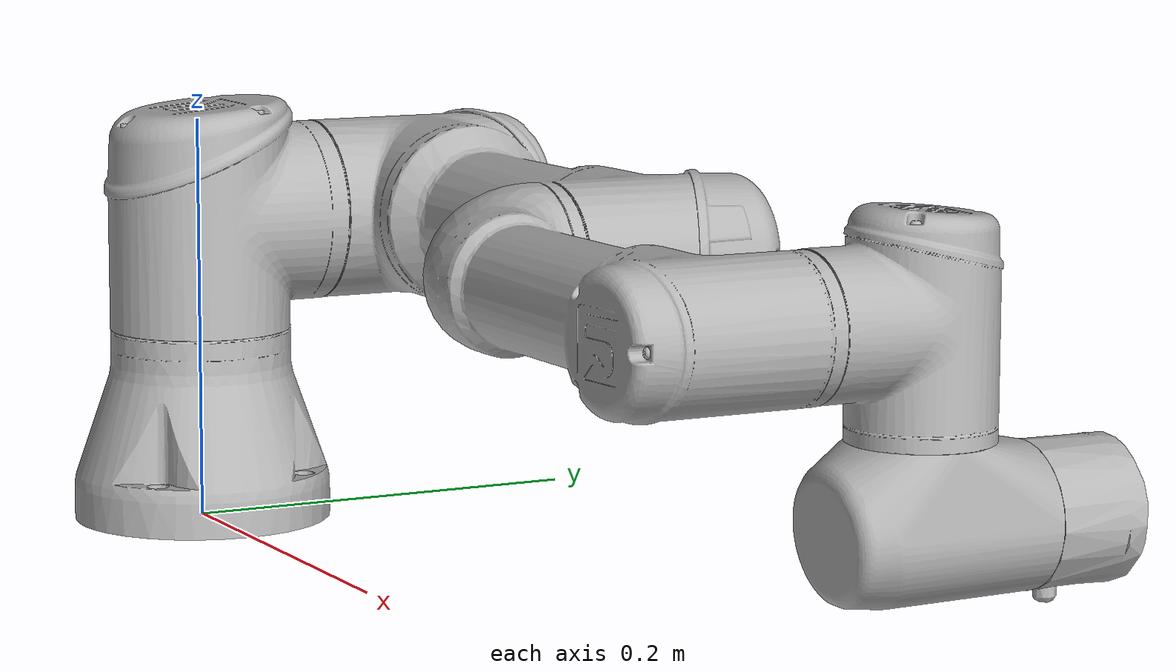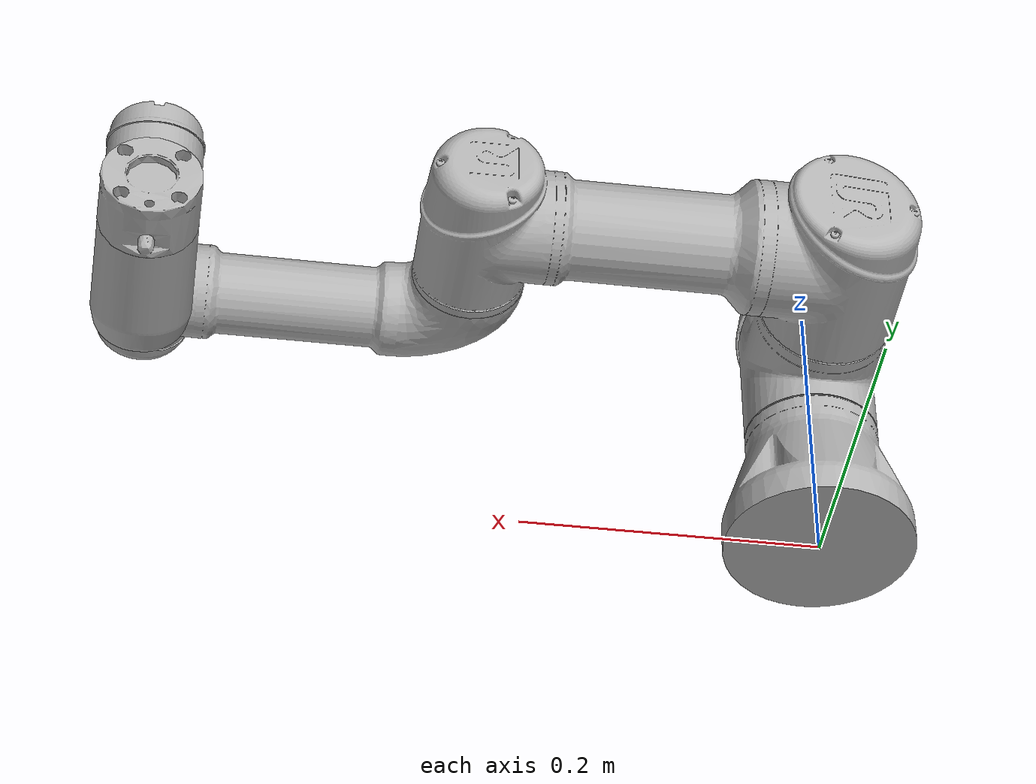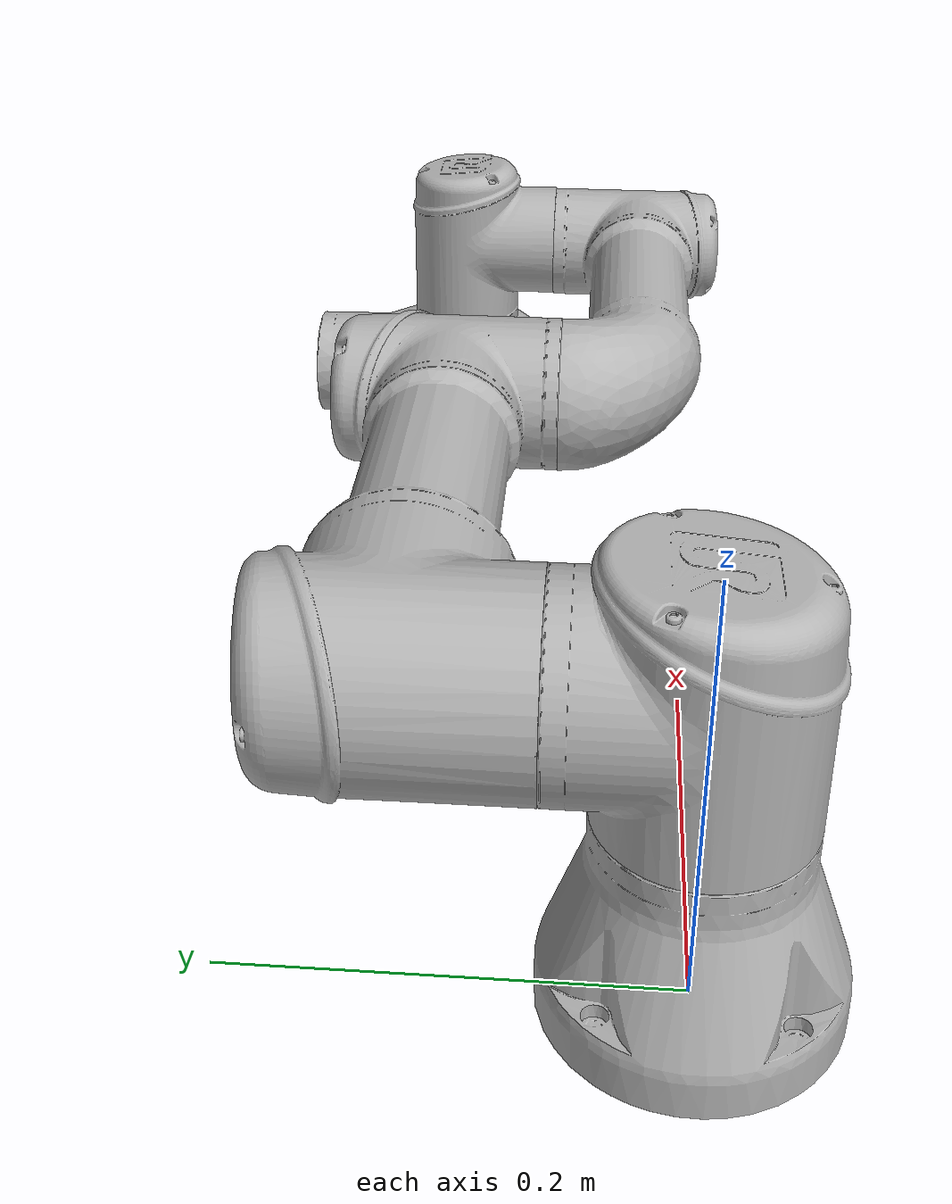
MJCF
<mujoco model="ur3e_robot">
  <compiler angle="radian" meshdir="../meshes/"/>
  <option gravity="0 0 -9.81" integrator="RK4" timestep="0.002"/>

  <asset>
    <mesh name="base" content_type="model/stl" file="ur3e/collision/base.stl"/>
    <mesh name="shoulder" content_type="model/stl" file="ur3e/collision/shoulder.stl"/>
    <mesh name="upperarm" content_type="model/stl" file="ur3e/collision/upperarm.stl"/>
    <mesh name="forearm" content_type="model/stl" file="ur3e/collision/forearm.stl"/>
    <mesh name="wrist1" content_type="model/stl" file="ur3e/collision/wrist1.stl"/>
    <mesh name="wrist2" content_type="model/stl" file="ur3e/collision/wrist2.stl"/>
    <mesh name="wrist3" content_type="model/stl" file="ur3e/collision/wrist3.stl"/>
  </asset>

  <worldbody>
    <body name="base_link">
      <body name="base_link_inertia" quat="0 0 0 1">
        <inertial pos="0 0 0" quat="0.5 0.5 -0.5 0.5"
                  mass="2" diaginertia="0.005625 0.00305317 0.00305317"/>
        <geom pos="0 0 0" quat="0 0 0 1" type="mesh"
              contype="0" conaffinity="0" group="1" density="0"
              rgba="0.7 0.7 0.7 1" mesh="base"/>
        <geom pos="0 0 0" quat="0 0 0 1" type="mesh"
              rgba="0.7 0.7 0.7 1" mesh="base"/>

        <body name="shoulder_link" pos="0 0 0.15185">
          <inertial pos="0 0 0" mass="2"
                    diaginertia="0.00809316 0.00809316 0.005625"/>
          <joint name="shoulder_pan_joint" pos="0 0 0" axis="0 0 1"
                 range="-6.28319 6.28319" actuatorfrcrange="-56 56"/>
          <geom quat="0 0 0 1" type="mesh"
                contype="0" conaffinity="0" group="1" density="0"
                rgba="0.7 0.7 0.7 1" mesh="shoulder"/>
          <geom quat="0 0 0 1" type="mesh"
                rgba="0.7 0.7 0.7 1" mesh="shoulder"/>

          <body name="upper_arm_link" quat="0.707107 0.707107 0 0">
            <inertial pos="-0.121825 0 0.12"
                      mass="3.42"
                      diaginertia="0.0217285 0.0217285 0.00961875"/>
            <joint name="shoulder_lift_joint" pos="0 0 0" axis="0 0 1"
                   range="-6.28319 6.28319" actuatorfrcrange="-56 56"/>
            <geom pos="0 0 0.12" quat="0.5 0.5 -0.5 -0.5" type="mesh"
                  contype="0" conaffinity="0" group="1" density="0"
                  rgba="0.7 0.7 0.7 1" mesh="upperarm"/>
            <geom pos="0 0 0.12" quat="0.5 0.5 -0.5 -0.5" type="mesh"
                  rgba="0.7 0.7 0.7 1" mesh="upperarm"/>

            <body name="forearm_link" pos="-0.24355 0 0">
              <inertial pos="-0.1066 0 0.027"
                        mass="1.26"
                        diaginertia="0.00654457 0.00654457 0.00354375"/>
              <joint name="elbow_joint" pos="0 0 0" axis="0 0 1"
                     range="-3.14159 3.14159" actuatorfrcrange="-28 28"/>
              <geom pos="0 0 0.027" quat="0.5 0.5 -0.5 -0.5" type="mesh"
                    contype="0" conaffinity="0" group="1" density="0"
                    rgba="0.7 0.7 0.7 1" mesh="forearm"/>
              <geom pos="0 0 0.027" quat="0.5 0.5 -0.5 -0.5" type="mesh"
                    rgba="0.7 0.7 0.7 1" mesh="forearm"/>

              <body name="wrist_1_link" pos="-0.2132 0 0.13105">
                <inertial pos="0 0 0" quat="0.5 0.5 -0.5 0.5"
                          mass="0.8"
                          diaginertia="0.00225 0.002085 0.002085"/>
                <joint name="wrist_1_joint" pos="0 0 0" axis="0 0 1"
                       range="-6.28319 6.28319" actuatorfrcrange="-12 12"/>
                <geom pos="0 0 -0.104" quat="0.707107 0.707107 0 0"
                      type="mesh"
                      contype="0" conaffinity="0" group="1" density="0"
                      rgba="0.7 0.7 0.7 1" mesh="wrist1"/>
                <geom pos="0 0 -0.104" quat="0.707107 0.707107 0 0"
                      type="mesh"
                      rgba="0.7 0.7 0.7 1" mesh="wrist1"/>

                <body name="wrist_2_link"
                      pos="0 -0.08535 -1.75056e-11"
                      quat="0.707107 0.707107 0 0">
                  <inertial pos="0 0 0" quat="0.5 0.5 -0.5 0.5"
                            mass="0.8"
                            diaginertia="0.00225 0.002085 0.002085"/>
                  <joint name="wrist_2_joint" pos="0 0 0" axis="0 0 1"
                         range="-6.28319 6.28319" actuatorfrcrange="-12 12"/>
                  <geom pos="0 0 -0.08535" quat="1 0 0 0"
                        type="mesh"
                        contype="0" conaffinity="0" group="1" density="0"
                        rgba="0.7 0.7 0.7 1" mesh="wrist2"/>
                  <geom pos="0 0 -0.08535" quat="1 0 0 0"
                        type="mesh"
                        rgba="0.7 0.7 0.7 1" mesh="wrist2"/>

                  <body name="wrist_3_link"
                        pos="0 0.0921 -1.889e-11"
                        quat="0.707107 -0.707107 0 0">
                    <inertial pos="0 0 -0.02" quat="0.5 0.5 -0.5 0.5"
                              mass="0.35"
                              diaginertia="0.0001792 0.000136267 0.000136267"/>
                    <joint name="wrist_3_joint" pos="0 0 0" axis="0 0 1"
                           range="-6.28319 6.28319" actuatorfrcrange="-12 12"/>
                    <geom pos="0 0 -0.0921" quat="0.707107 0.707107 0 0"
                          type="mesh"
                          contype="0" conaffinity="0" group="1" density="0"
                          rgba="0.7 0.7 0.7 1" mesh="wrist3"/>
                    <geom pos="0 0 -0.0921" quat="0.707107 0.707107 0 0"
                          type="mesh"
                          rgba="0.7 0.7 0.7 1" mesh="wrist3"/>

                    <body name="flange" quat="0.5 -0.5 -0.5 -0.5">
                      <body name="tool0" quat="0.5 0.5 0.5 0.5"/>
                    </body>
                  </body>
                </body>
              </body>
            </body>
          </body>
        </body>
      </body>

      <!-- ROS-Industrial base frame -->
      <body name="base" quat="0 0 0 1"/>
    </body>
  </worldbody>

  <actuator>
    <motor name="shoulder_pan_motor" joint="shoulder_pan_joint"
           ctrlrange="-102 102" gear="101"/>
    <motor name="shoulder_lift_motor" joint="shoulder_lift_joint"
           ctrlrange="-102 102" gear="101"/>
    <motor name="elbow_motor" joint="elbow_joint"
           ctrlrange="-66 66" gear="121"/>
    <motor name="wrist_1_motor" joint="wrist_1_joint"
           ctrlrange="-34 34" gear="101"/>
    <motor name="wrist_2_motor" joint="wrist_2_joint"
           ctrlrange="-34 34" gear="101"/>
    <motor name="wrist_3_motor" joint="wrist_3_joint"
           ctrlrange="-34 34" gear="101"/>
  </actuator>
</mujoco>
